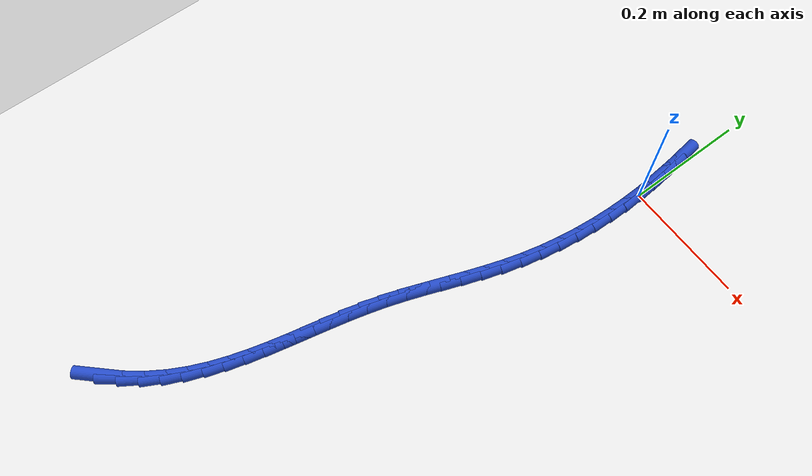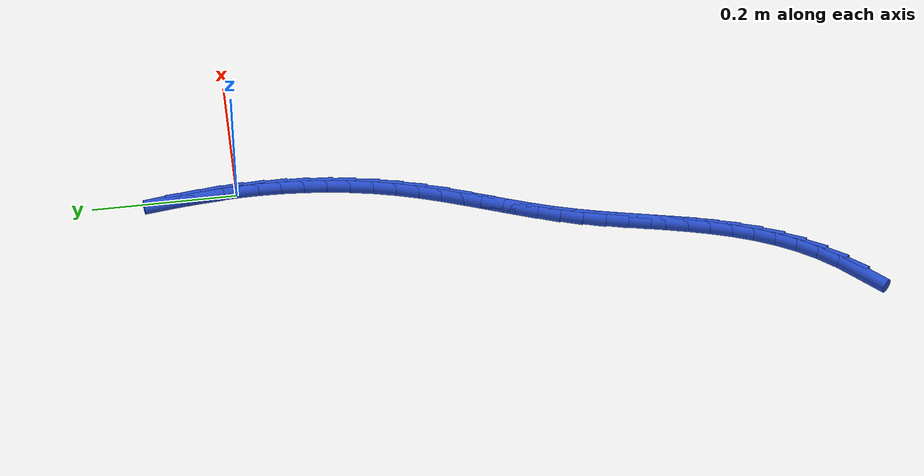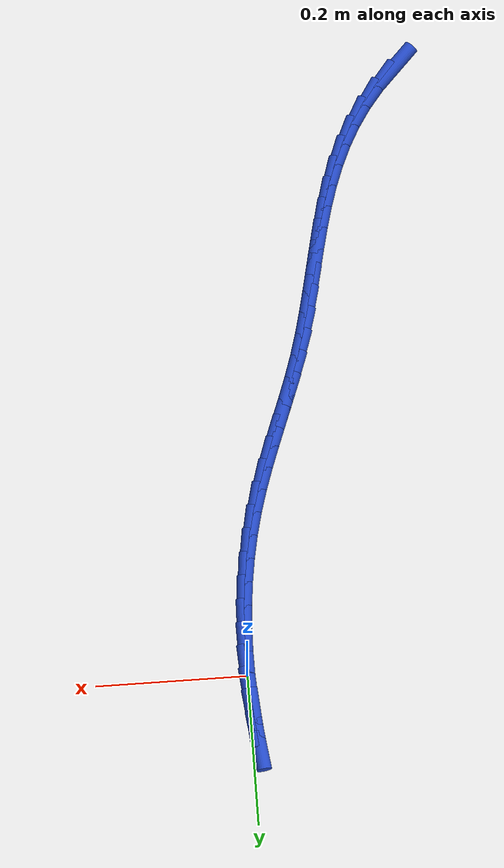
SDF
<sdf version="1.6">
 <world name="default">
  <model name="ground_plane">
   <static>1</static>
   <link name="link">
    <collision name="collision">
     <geometry><plane><normal>0 0 1</normal><size>100 100</size></plane></geometry>
     <surface><friction><ode><mu>100</mu><mu2>50</mu2></ode></friction></surface>
    </collision>
    <visual name="visual">
     <cast_shadows>0</cast_shadows>
     <geometry><plane><normal>0 0 1</normal><size>100 100</size></plane></geometry>
     <material>
      <script><uri>file://media/materials/scripts/gazebo.material</uri><name>Gazebo/WhiteGlow</name></script>
     </material>
    </visual>
   </link>
  </model>
  <model name="line">
   <link name="link_0">
    <pose>-6.071532165918825e-18 -3.469446951953614e-17 0.01 0 1.57 -1.5163979464009278</pose>
    <collision name="collision">
     <geometry><cylinder><radius>0.01</radius><length>0.08</length></cylinder></geometry>
    </collision>
    <visual name="visual">
     <material>
      <script><name>Gazebo/Blue</name><uri>file://media/materials/scripts/gazebo.material</uri></script>
     </material>
     <geometry><cylinder><radius>0.01</radius><length>0.08</length></cylinder></geometry>
    </visual>
   </link>
   <link name="link_1">
    <pose>-0.0016290830249006591 0.029917725074173986 0.01 0 1.57 -1.482501930360785</pose>
    <collision name="collision">
     <geometry><cylinder><radius>0.01</radius><length>0.08</length></cylinder></geometry>
    </collision>
    <visual name="visual">
     <material>
      <script><name>Gazebo/Blue</name><uri>file://media/materials/scripts/gazebo.material</uri></script>
     </material>
     <geometry><cylinder><radius>0.01</radius><length>0.08</length></cylinder></geometry>
    </visual>
   </link>
   <link name="link_2">
    <pose>-0.004249189029331303 0.05951522925899522 0.01 0 1.57 -1.4571306769228125</pose>
    <collision name="collision">
     <geometry><cylinder><radius>0.01</radius><length>0.08</length></cylinder></geometry>
    </collision>
    <visual name="visual">
     <material>
      <script><name>Gazebo/Blue</name><uri>file://media/materials/scripts/gazebo.material</uri></script>
     </material>
     <geometry><cylinder><radius>0.01</radius><length>0.08</length></cylinder></geometry>
    </visual>
   </link>
   <link name="link_3">
    <pose>-0.007646788076500758 0.08927755623955241 0.01 0 1.57 -1.441263394326055</pose>
    <collision name="collision">
     <geometry><cylinder><radius>0.01</radius><length>0.08</length></cylinder></geometry>
    </collision>
    <visual name="visual">
     <material>
      <script><name>Gazebo/Blue</name><uri>file://media/materials/scripts/gazebo.material</uri></script>
     </material>
     <geometry><cylinder><radius>0.01</radius><length>0.08</length></cylinder></geometry>
    </visual>
   </link>
   <link name="link_252">
    <pose>-0.25624855631885496 -0.8263023651843425 0.01 0 1.57 0.8103329105463671</pose>
    <collision name="collision">
     <geometry><cylinder><radius>0.01</radius><length>0.08</length></cylinder></geometry>
    </collision>
    <visual name="visual">
     <material>
      <script><name>Gazebo/Blue</name><uri>file://media/materials/scripts/gazebo.material</uri></script>
     </material>
     <geometry><cylinder><radius>0.01</radius><length>0.08</length></cylinder></geometry>
    </visual>
   </link>
   <link name="link_253">
    <pose>-0.23291705317471553 -0.8017773238361555 0.01 0 1.57 0.9042165084049396</pose>
    <collision name="collision">
     <geometry><cylinder><radius>0.01</radius><length>0.08</length></cylinder></geometry>
    </collision>
    <visual name="visual">
     <material>
      <script><name>Gazebo/Blue</name><uri>file://media/materials/scripts/gazebo.material</uri></script>
     </material>
     <geometry><cylinder><radius>0.01</radius><length>0.08</length></cylinder></geometry>
    </visual>
   </link>
   <link name="link_254">
    <pose>-0.2128667676829669 -0.7762908266285133 0.01 0 1.57 0.9944998613087337</pose>
    <collision name="collision">
     <geometry><cylinder><radius>0.01</radius><length>0.08</length></cylinder></geometry>
    </collision>
    <visual name="visual">
     <material>
      <script><name>Gazebo/Blue</name><uri>file://media/materials/scripts/gazebo.material</uri></script>
     </material>
     <geometry><cylinder><radius>0.01</radius><length>0.08</length></cylinder></geometry>
    </visual>
   </link>
   <link name="link_255">
    <pose>-0.19573892026411904 -0.7499357500066586 0.01 0 1.57 1.0781328672176995</pose>
    <collision name="collision">
     <geometry><cylinder><radius>0.01</radius><length>0.08</length></cylinder></geometry>
    </collision>
    <visual name="visual">
     <material>
      <script><name>Gazebo/Blue</name><uri>file://media/materials/scripts/gazebo.material</uri></script>
     </material>
     <geometry><cylinder><radius>0.01</radius><length>0.08</length></cylinder></geometry>
    </visual>
   </link>
   <link name="link_256">
    <pose>-0.1811747313386824 -0.722804970415836 0.01 0 1.57 1.1526408335364156</pose>
    <collision name="collision">
     <geometry><cylinder><radius>0.01</radius><length>0.08</length></cylinder></geometry>
    </collision>
    <visual name="visual">
     <material>
      <script><name>Gazebo/Blue</name><uri>file://media/materials/scripts/gazebo.material</uri></script>
     </material>
     <geometry><cylinder><radius>0.01</radius><length>0.08</length></cylinder></geometry>
    </visual>
   </link>
   <link name="link_257">
    <pose>-0.16881542132716715 -0.6949913643012892 0.01 0 1.57 1.216295798496813</pose>
    <collision name="collision">
     <geometry><cylinder><radius>0.01</radius><length>0.08</length></cylinder></geometry>
    </collision>
    <visual name="visual">
     <material>
      <script><name>Gazebo/Blue</name><uri>file://media/materials/scripts/gazebo.material</uri></script>
     </material>
     <geometry><cylinder><radius>0.01</radius><length>0.08</length></cylinder></geometry>
    </visual>
   </link>
   <link name="link_258">
    <pose>-0.1583022106500836 -0.666587808108262 0.01 0 1.57 1.268086606109057</pose>
    <collision name="collision">
     <geometry><cylinder><radius>0.01</radius><length>0.08</length></cylinder></geometry>
    </collision>
    <visual name="visual">
     <material>
      <script><name>Gazebo/Blue</name><uri>file://media/materials/scripts/gazebo.material</uri></script>
     </material>
     <geometry><cylinder><radius>0.01</radius><length>0.08</length></cylinder></geometry>
    </visual>
   </link>
   <link name="link_259">
    <pose>-0.14927631972794198 -0.6376871782819984 0.01 0 1.57 1.3075601259139642</pose>
    <collision name="collision">
     <geometry><cylinder><radius>0.01</radius><length>0.08</length></cylinder></geometry>
    </collision>
    <visual name="visual">
     <material>
      <script><name>Gazebo/Blue</name><uri>file://media/materials/scripts/gazebo.material</uri></script>
     </material>
     <geometry><cylinder><radius>0.01</radius><length>0.08</length></cylinder></geometry>
    </visual>
   </link>
   <link name="link_260">
    <pose>-0.14137896898125263 -0.6083823512677424 0.01 0 1.57 1.3346220221180385</pose>
    <collision name="collision">
     <geometry><cylinder><radius>0.01</radius><length>0.08</length></cylinder></geometry>
    </collision>
    <visual name="visual">
     <material>
      <script><name>Gazebo/Blue</name><uri>file://media/materials/scripts/gazebo.material</uri></script>
     </material>
     <geometry><cylinder><radius>0.01</radius><length>0.08</length></cylinder></geometry>
    </visual>
   </link>
   <link name="link_261">
    <pose>-0.13425137883052563 -0.578766203510737 0.01 0 1.57 1.3493598292302191</pose>
    <collision name="collision">
     <geometry><cylinder><radius>0.01</radius><length>0.08</length></cylinder></geometry>
    </collision>
    <visual name="visual">
     <material>
      <script><name>Gazebo/Blue</name><uri>file://media/materials/scripts/gazebo.material</uri></script>
     </material>
     <geometry><cylinder><radius>0.01</radius><length>0.08</length></cylinder></geometry>
    </visual>
   </link>
   <link name="link_262">
    <pose>-0.12753476969627156 -0.5489316114562277 0.01 0 1.57 1.351917643465962</pose>
    <collision name="collision">
     <geometry><cylinder><radius>0.01</radius><length>0.08</length></cylinder></geometry>
    </collision>
    <visual name="visual">
     <material>
      <script><name>Gazebo/Blue</name><uri>file://media/materials/scripts/gazebo.material</uri></script>
     </material>
     <geometry><cylinder><radius>0.01</radius><length>0.08</length></cylinder></geometry>
    </visual>
   </link>
   <link name="link_263">
    <pose>-0.12087036199900052 -0.5189714515494577 0.01 0 1.57 1.3424292459163745</pose>
    <collision name="collision">
     <geometry><cylinder><radius>0.01</radius><length>0.08</length></cylinder></geometry>
    </collision>
    <visual name="visual">
     <material>
      <script><name>Gazebo/Blue</name><uri>file://media/materials/scripts/gazebo.material</uri></script>
     </material>
     <geometry><cylinder><radius>0.01</radius><length>0.08</length></cylinder></geometry>
    </visual>
   </link>
   <link name="link_264">
    <pose>-0.11389937615922277 -0.48897860023567064 0.01 0 1.57 1.3210071302992739</pose>
    <collision name="collision">
     <geometry><cylinder><radius>0.01</radius><length>0.08</length></cylinder></geometry>
    </collision>
    <visual name="visual">
     <material>
      <script><name>Gazebo/Blue</name><uri>file://media/materials/scripts/gazebo.material</uri></script>
     </material>
     <geometry><cylinder><radius>0.01</radius><length>0.08</length></cylinder></geometry>
    </visual>
   </link>
   <link name="link_265">
    <pose>-0.10626303259744864 -0.4590459339601109 0.01 0 1.57 1.2877993028806247</pose>
    <collision name="collision">
     <geometry><cylinder><radius>0.01</radius><length>0.08</length></cylinder></geometry>
    </collision>
    <visual name="visual">
     <material>
      <script><name>Gazebo/Blue</name><uri>file://media/materials/scripts/gazebo.material</uri></script>
     </material>
     <geometry><cylinder><radius>0.01</radius><length>0.08</length></cylinder></geometry>
    </visual>
   </link>
   <link name="link_266">
    <pose>-0.09760302654652209 -0.4292661978958721 0.01 0 1.57 1.2494521980391784</pose>
    <collision name="collision">
     <geometry><cylinder><radius>0.01</radius><length>0.08</length></cylinder></geometry>
    </collision>
    <visual name="visual">
     <material>
      <script><name>Gazebo/Blue</name><uri>file://media/materials/scripts/gazebo.material</uri></script>
     </material>
     <geometry><cylinder><radius>0.01</radius><length>0.08</length></cylinder></geometry>
    </visual>
   </link>
   <link name="link_267">
    <pose>-0.08775392455137794 -0.39967881376596726 0.01 0 1.57 1.22227293807541</pose>
    <collision name="collision">
     <geometry><cylinder><radius>0.01</radius><length>0.08</length></cylinder></geometry>
    </collision>
    <visual name="visual">
     <material>
      <script><name>Gazebo/Blue</name><uri>file://media/materials/scripts/gazebo.material</uri></script>
     </material>
     <geometry><cylinder><radius>0.01</radius><length>0.08</length></cylinder></geometry>
    </visual>
   </link>
   <link name="link_268">
    <pose>-0.07703835671253782 -0.37018826755641093 0.01 0 1.57 1.2085532135766779</pose>
    <collision name="collision">
     <geometry><cylinder><radius>0.01</radius><length>0.08</length></cylinder></geometry>
    </collision>
    <visual name="visual">
     <material>
      <script><name>Gazebo/Blue</name><uri>file://media/materials/scripts/gazebo.material</uri></script>
     </material>
     <geometry><cylinder><radius>0.01</radius><length>0.08</length></cylinder></geometry>
    </visual>
   </link>
   <link name="link_269">
    <pose>-0.06585498036824411 -0.3406780258772853 0.01 0 1.57 1.208036414474911</pose>
    <collision name="collision">
     <geometry><cylinder><radius>0.01</radius><length>0.08</length></cylinder></geometry>
    </collision>
    <visual name="visual">
     <material>
      <script><name>Gazebo/Blue</name><uri>file://media/materials/scripts/gazebo.material</uri></script>
     </material>
     <geometry><cylinder><radius>0.01</radius><length>0.08</length></cylinder></geometry>
    </visual>
   </link>
   <link name="link_270">
    <pose>-0.05460245285673875 -0.3110315553386715 0.01 0 1.57 1.220532227135321</pose>
    <collision name="collision">
     <geometry><cylinder><radius>0.01</radius><length>0.08</length></cylinder></geometry>
    </collision>
    <visual name="visual">
     <material>
      <script><name>Gazebo/Blue</name><uri>file://media/materials/scripts/gazebo.material</uri></script>
     </material>
     <geometry><cylinder><radius>0.01</radius><length>0.08</length></cylinder></geometry>
    </visual>
   </link>
   <link name="link_271">
    <pose>-0.0436794315162648 -0.28113232255065357 0.01 0 1.57 1.2459166372677388</pose>
    <collision name="collision">
     <geometry><cylinder><radius>0.01</radius><length>0.08</length></cylinder></geometry>
    </collision>
    <visual name="visual">
     <material>
      <script><name>Gazebo/Blue</name><uri>file://media/materials/scripts/gazebo.material</uri></script>
     </material>
     <geometry><cylinder><radius>0.01</radius><length>0.08</length></cylinder></geometry>
    </visual>
   </link>
   <link name="link_272">
    <pose>-0.033484573685064245 -0.25086379412331283 0.01 0 1.57 1.2840662956911797</pose>
    <collision name="collision">
     <geometry><cylinder><radius>0.01</radius><length>0.08</length></cylinder></geometry>
    </collision>
    <visual name="visual">
     <material>
      <script><name>Gazebo/Blue</name><uri>file://media/materials/scripts/gazebo.material</uri></script>
     </material>
     <geometry><cylinder><radius>0.01</radius><length>0.08</length></cylinder></geometry>
    </visual>
   </link>
   <link name="link_273">
    <pose>-0.024416502253432414 -0.22010946128172623 0.01 0 1.57 1.3314968728060212</pose>
    <collision name="collision">
     <geometry><cylinder><radius>0.01</radius><length>0.08</length></cylinder></geometry>
    </collision>
    <visual name="visual">
     <material>
      <script><name>Gazebo/Blue</name><uri>file://media/materials/scripts/gazebo.material</uri></script>
     </material>
     <geometry><cylinder><radius>0.01</radius><length>0.08</length></cylinder></geometry>
    </visual>
   </link>
   <link name="link_274">
    <pose>-0.01678225233017086 -0.18881825987023007 0.01 0 1.57 1.3779706630264588</pose>
    <collision name="collision">
     <geometry><cylinder><radius>0.01</radius><length>0.08</length></cylinder></geometry>
    </collision>
    <visual name="visual">
     <material>
      <script><name>Gazebo/Blue</name><uri>file://media/materials/scripts/gazebo.material</uri></script>
     </material>
     <geometry><cylinder><radius>0.01</radius><length>0.08</length></cylinder></geometry>
    </visual>
   </link>
   <link name="link_275">
    <pose>-0.010598333518834033 -0.15714672254100906 0.01 0 1.57 1.422016609227476</pose>
    <collision name="collision">
     <geometry><cylinder><radius>0.01</radius><length>0.08</length></cylinder></geometry>
    </collision>
    <visual name="visual">
     <material>
      <script><name>Gazebo/Blue</name><uri>file://media/materials/scripts/gazebo.material</uri></script>
     </material>
     <geometry><cylinder><radius>0.01</radius><length>0.08</length></cylinder></geometry>
    </visual>
   </link>
   <link name="link_276">
    <pose>-0.005823782786821334 -0.1252924493760908 0.01 0 1.57 1.4642227302454214</pose>
    <collision name="collision">
     <geometry><cylinder><radius>0.01</radius><length>0.08</length></cylinder></geometry>
    </collision>
    <visual name="visual">
     <material>
      <script><name>Gazebo/Blue</name><uri>file://media/materials/scripts/gazebo.material</uri></script>
     </material>
     <geometry><cylinder><radius>0.01</radius><length>0.08</length></cylinder></geometry>
    </visual>
   </link>
   <link name="link_277">
    <pose>-0.002417637101532177 -0.09345304045750306 0.01 0 1.57 1.5051650054910302</pose>
    <collision name="collision">
     <geometry><cylinder><radius>0.01</radius><length>0.08</length></cylinder></geometry>
    </collision>
    <visual name="visual">
     <material>
      <script><name>Gazebo/Blue</name><uri>file://media/materials/scripts/gazebo.material</uri></script>
     </material>
     <geometry><cylinder><radius>0.01</radius><length>0.08</length></cylinder></geometry>
    </visual>
   </link>
   <link name="link_278">
    <pose>-0.00033893343036595644 -0.061826095867273695 0.01 0 1.57 1.5454236862858564</pose>
    <collision name="collision">
     <geometry><cylinder><radius>0.01</radius><length>0.08</length></cylinder></geometry>
    </collision>
    <visual name="visual">
     <material>
      <script><name>Gazebo/Blue</name><uri>file://media/materials/scripts/gazebo.material</uri></script>
     </material>
     <geometry><cylinder><radius>0.01</radius><length>0.08</length></cylinder></geometry>
    </visual>
   </link>
   <link name="link_279">
    <pose>0.00045329125927791964 -0.030609215687429404 0.01 0 1.57 -1.5559884293372914</pose>
    <collision name="collision">
     <geometry><cylinder><radius>0.01</radius><length>0.08</length></cylinder></geometry>
    </collision>
    <visual name="visual">
     <material>
      <script><name>Gazebo/Blue</name><uri>file://media/materials/scripts/gazebo.material</uri></script>
     </material>
     <geometry><cylinder><radius>0.01</radius><length>0.08</length></cylinder></geometry>
    </visual>
   </link>
   <link name="link_280">
    <pose>1.734723475976807e-18 1.3877787807814457e-17 0.01 0 1.57 -1.5152286112850737</pose>
    <collision name="collision">
     <geometry><cylinder><radius>0.01</radius><length>0.08</length></cylinder></geometry>
    </collision>
    <visual name="visual">
     <material>
      <script><name>Gazebo/Blue</name><uri>file://media/materials/scripts/gazebo.material</uri></script>
     </material>
     <geometry><cylinder><radius>0.01</radius><length>0.08</length></cylinder></geometry>
    </visual>
   </link>
   <link name="link_281">
    <pose>-0.0016578441755990747 0.029803951112987816 0.01 0 1.57 -1.4731451430307057</pose>
    <collision name="collision">
     <geometry><cylinder><radius>0.01</radius><length>0.08</length></cylinder></geometry>
    </collision>
    <visual name="visual">
     <material>
      <script><name>Gazebo/Blue</name><uri>file://media/materials/scripts/gazebo.material</uri></script>
     </material>
     <geometry><cylinder><radius>0.01</radius><length>0.08</length></cylinder></geometry>
    </visual>
   </link>
   <link name="link_282">
    <pose>-0.004479278234918714 0.058605037569506274 0.01 0 1.57 -1.4945130152115342</pose>
    <collision name="collision">
     <geometry><cylinder><radius>0.01</radius><length>0.08</length></cylinder></geometry>
    </collision>
    <visual name="visual">
     <material>
      <script><name>Gazebo/Blue</name><uri>file://media/materials/scripts/gazebo.material</uri></script>
     </material>
     <geometry><cylinder><radius>0.01</radius><length>0.08</length></cylinder></geometry>
    </visual>
   </link>
  </model>
 </world>
</sdf>
